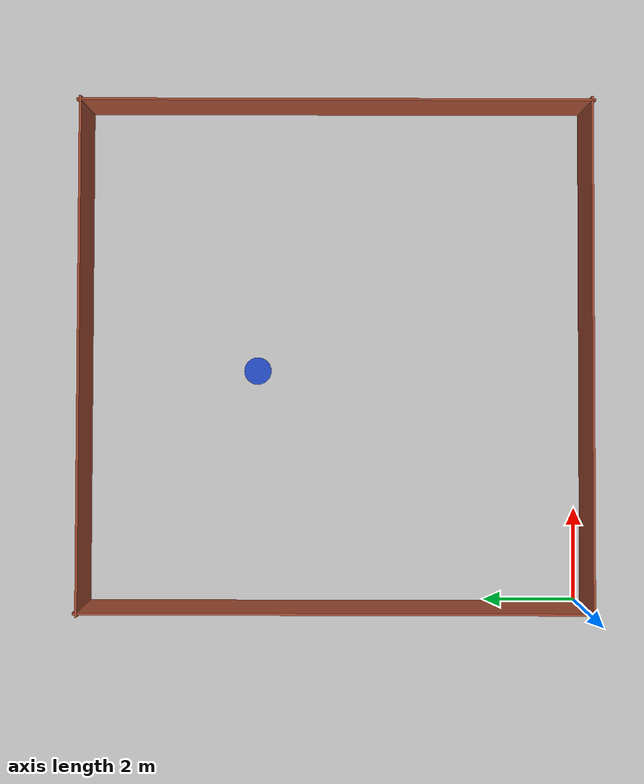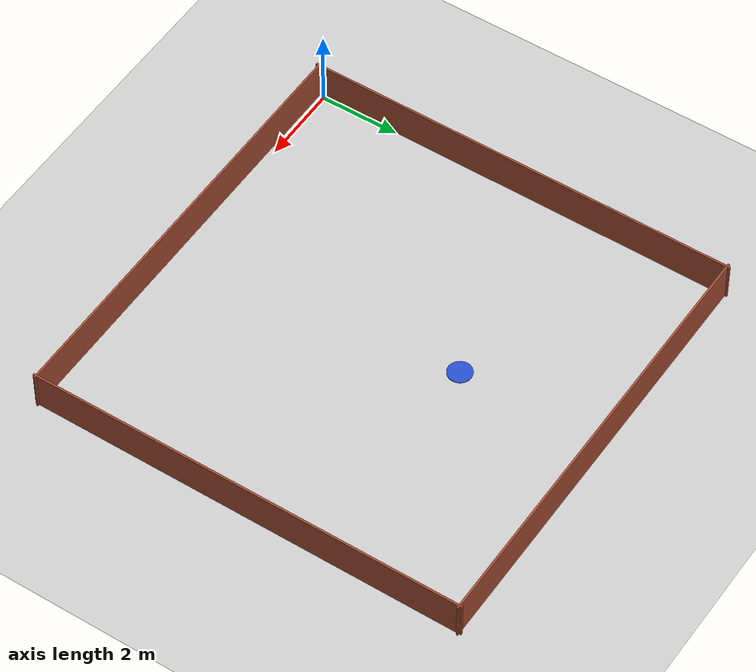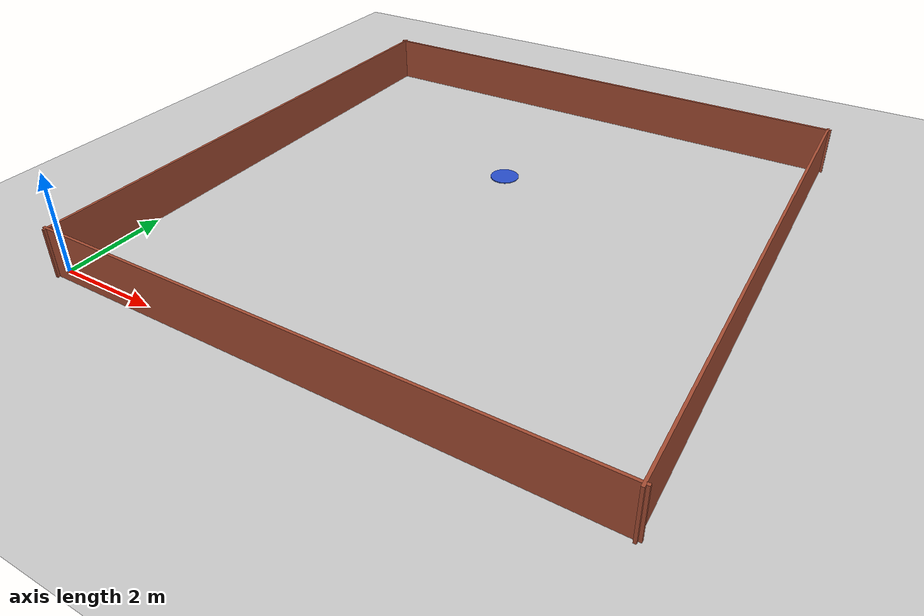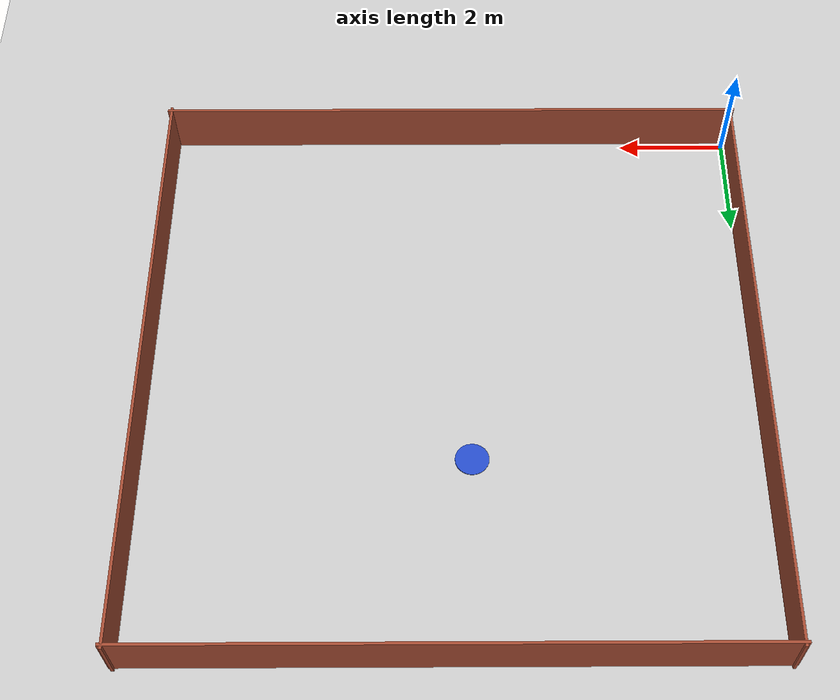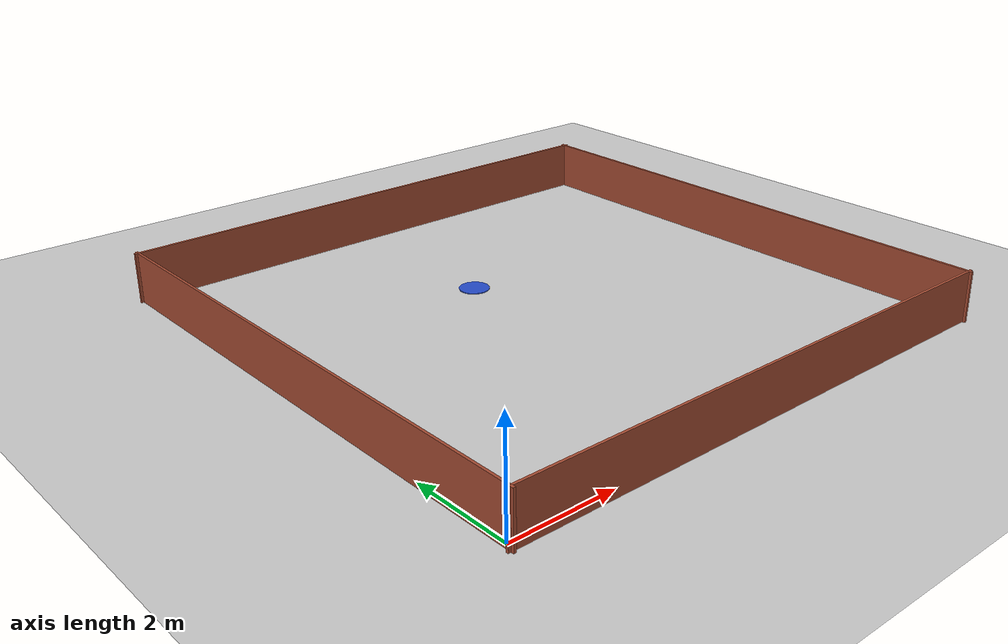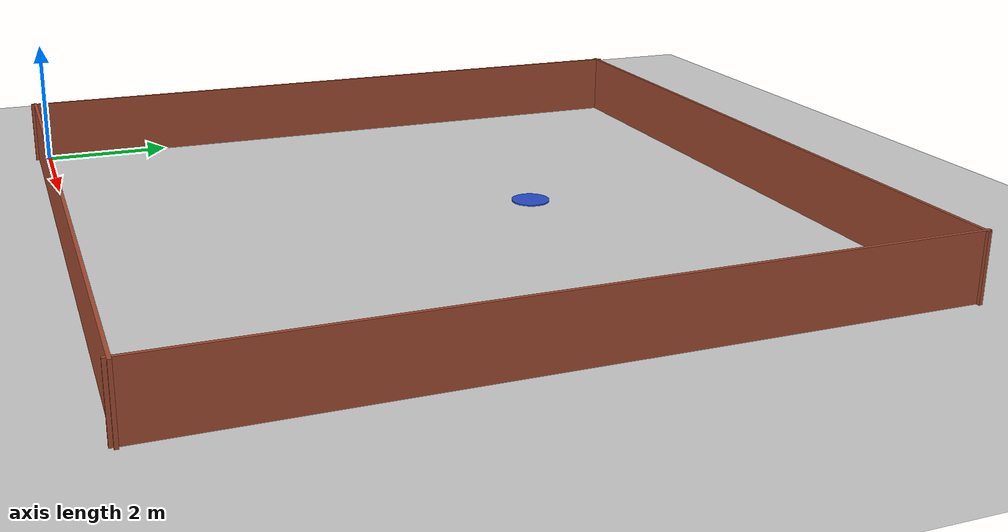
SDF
<sdf version="1.7">
 <world name="default">
  <light name="sun" type="directional">
   <pose>0 0 10 0 -0 0</pose>
   <diffuse>0.8 0.8 0.8 1</diffuse>
   <specular>0.2 0.2 0.2 1</specular>
   <attenuation>
    <range>1000</range>
    <constant>0.9</constant>
    <linear>0.01</linear>
    <quadratic>0.001</quadratic>
   </attenuation>
   <direction>-0.5 0.1 -0.9</direction>
   <spot><inner_angle>0</inner_angle><outer_angle>0</outer_angle><falloff>0</falloff></spot>
  </light>
  <model name="ground_plane">
   <static>1</static>
   <link name="link">
    <collision name="collision">
     <geometry><plane><normal>0 0 1</normal><size>100 100</size></plane></geometry>
     <surface>
      <contact><collide_bitmask>65535</collide_bitmask></contact>
      <friction><ode><mu>100</mu><mu2>50</mu2></ode></friction>
     </surface>
    </collision>
    <visual name="visual">
     <cast_shadows>0</cast_shadows>
     <geometry><plane><normal>0 0 1</normal><size>100 100</size></plane></geometry>
     <material>
      <script><uri>file://media/materials/scripts/gazebo.material</uri><name>Gazebo/Grey</name></script>
     </material>
    </visual>
   </link>
  </model>
  <gravity>0 0 -9.8</gravity>
  <magnetic_field>6e-06 2.3e-05 -4.2e-05</magnetic_field>
  <atmosphere type="adiabatic"/>
  <physics type="ode">
   <max_step_size>0.001</max_step_size>
   <real_time_factor>1</real_time_factor>
   <real_time_update_rate>1000</real_time_update_rate>
  </physics>
  <scene><ambient>0.4 0.4 0.4 1</ambient><background>0.7 0.7 0.7 1</background><shadows>1</shadows></scene>
  <spherical_coordinates>
   <surface_model>EARTH_WGS84</surface_model>
   <latitude_deg>0</latitude_deg>
   <longitude_deg>0</longitude_deg>
   <elevation>0</elevation>
   <heading_deg>0</heading_deg>
  </spherical_coordinates>
  <model name="11X11-EmptyWorld">
   <link name="Wall_0">
    <pose>0 5.425 0 0 -0 0</pose>
    <inertial>
     <mass>1</mass>
     <inertia><ixx>1</ixx><ixy>0</ixy><ixz>0</ixz><iyy>1</iyy><iyz>0</iyz><izz>1</izz></inertia>
    </inertial>
    <visual name="Wall_0_Visual">
     <pose>0 0 1.25 0 -0 0</pose>
     <geometry><box><size>11 0.05 1</size></box></geometry>
     <material>
      <script><uri>file://media/materials/scripts/gazebo.material</uri><name>Gazebo/Bricks</name></script>
      <ambient>1 1 1 1</ambient>
      <shader type="pixel"><normal_map>__default__</normal_map></shader>
      <diffuse>1 1 1 1</diffuse>
      <specular>0.2 0.2 0.2 1</specular>
      <emissive>0 0 0 1</emissive>
     </material>
     <meta><layer>0</layer></meta>
    </visual>
    <collision name="Wall_0_Collision">
     <pose>0 0 1.25 0 -0 0</pose>
     <geometry><box><size>11 0.15 2.5</size></box></geometry>
     <surface>
      <friction>
       <ode><mu>1</mu><mu2>1</mu2><fdir1>0 0 0</fdir1><slip1>0</slip1><slip2>0</slip2></ode>
       <torsional>
        <coefficient>1</coefficient>
        <patch_radius>0</patch_radius>
        <surface_radius>0</surface_radius>
        <use_patch_radius>1</use_patch_radius>
        <ode><slip>0</slip></ode>
       </torsional>
      </friction>
      <bounce><restitution_coefficient>0</restitution_coefficient><threshold>1e+06</threshold></bounce>
      <contact>
       <collide_without_contact>0</collide_without_contact>
       <collide_without_contact_bitmask>1</collide_without_contact_bitmask>
       <collide_bitmask>1</collide_bitmask>
       <ode>
        <soft_cfm>0</soft_cfm>
        <soft_erp>0.2</soft_erp>
        <kp>1e+13</kp>
        <kd>1</kd>
        <max_vel>0.01</max_vel>
        <min_depth>0</min_depth>
       </ode>
       <bullet>
        <split_impulse>1</split_impulse>
        <split_impulse_penetration_threshold>-0.01</split_impulse_penetration_threshold>
        <soft_cfm>0</soft_cfm>
        <soft_erp>0.2</soft_erp>
        <kp>1e+13</kp>
        <kd>1</kd>
       </bullet>
      </contact>
     </surface>
    </collision>
   </link>
   <link name="Wall_5">
    <pose>5.425 0 0 0 0 -1.5708</pose>
    <inertial>
     <mass>1</mass>
     <inertia><ixx>1</ixx><ixy>0</ixy><ixz>0</ixz><iyy>1</iyy><iyz>0</iyz><izz>1</izz></inertia>
    </inertial>
    <visual name="Wall_5_Visual">
     <pose>0 0 1.25 0 -0 0</pose>
     <geometry><box><size>11 0.05 1</size></box></geometry>
     <material>
      <script><uri>file://media/materials/scripts/gazebo.material</uri><name>Gazebo/Bricks</name></script>
      <ambient>1 1 1 1</ambient>
      <shader type="pixel"><normal_map>__default__</normal_map></shader>
      <diffuse>1 1 1 1</diffuse>
      <specular>0.2 0.2 0.2 1</specular>
      <emissive>0 0 0 1</emissive>
     </material>
     <meta><layer>0</layer></meta>
    </visual>
    <collision name="Wall_5_Collision">
     <pose>0 0 1.25 0 -0 0</pose>
     <geometry><box><size>11 0.15 2.5</size></box></geometry>
     <surface>
      <friction>
       <ode><mu>1</mu><mu2>1</mu2><fdir1>0 0 0</fdir1><slip1>0</slip1><slip2>0</slip2></ode>
       <torsional>
        <coefficient>1</coefficient>
        <patch_radius>0</patch_radius>
        <surface_radius>0</surface_radius>
        <use_patch_radius>1</use_patch_radius>
        <ode><slip>0</slip></ode>
       </torsional>
      </friction>
      <bounce><restitution_coefficient>0</restitution_coefficient><threshold>1e+06</threshold></bounce>
      <contact>
       <collide_without_contact>0</collide_without_contact>
       <collide_without_contact_bitmask>1</collide_without_contact_bitmask>
       <collide_bitmask>1</collide_bitmask>
       <ode>
        <soft_cfm>0</soft_cfm>
        <soft_erp>0.2</soft_erp>
        <kp>1e+13</kp>
        <kd>1</kd>
        <max_vel>0.01</max_vel>
        <min_depth>0</min_depth>
       </ode>
       <bullet>
        <split_impulse>1</split_impulse>
        <split_impulse_penetration_threshold>-0.01</split_impulse_penetration_threshold>
        <soft_cfm>0</soft_cfm>
        <soft_erp>0.2</soft_erp>
        <kp>1e+13</kp>
        <kd>1</kd>
       </bullet>
      </contact>
     </surface>
    </collision>
   </link>
   <link name="Wall_8">
    <pose>0 -5.425 0 0 -0 3.14159</pose>
    <inertial>
     <mass>1</mass>
     <inertia><ixx>1</ixx><ixy>0</ixy><ixz>0</ixz><iyy>1</iyy><iyz>0</iyz><izz>1</izz></inertia>
    </inertial>
    <visual name="Wall_8_Visual">
     <pose>0 0 1.25 0 -0 0</pose>
     <geometry><box><size>11 0.05 1</size></box></geometry>
     <material>
      <script><uri>file://media/materials/scripts/gazebo.material</uri><name>Gazebo/Bricks</name></script>
      <ambient>1 1 1 1</ambient>
      <shader type="pixel"><normal_map>__default__</normal_map></shader>
      <diffuse>1 1 1 1</diffuse>
      <specular>0.2 0.2 0.2 1</specular>
      <emissive>0 0 0 1</emissive>
     </material>
     <meta><layer>0</layer></meta>
    </visual>
    <collision name="Wall_8_Collision">
     <pose>0 0 1.25 0 -0 0</pose>
     <geometry><box><size>11 0.5 1</size></box></geometry>
     <surface>
      <friction>
       <ode><mu>1</mu><mu2>1</mu2><fdir1>0 0 0</fdir1><slip1>0</slip1><slip2>0</slip2></ode>
       <torsional>
        <coefficient>1</coefficient>
        <patch_radius>0</patch_radius>
        <surface_radius>0</surface_radius>
        <use_patch_radius>1</use_patch_radius>
        <ode><slip>0</slip></ode>
       </torsional>
      </friction>
      <bounce><restitution_coefficient>0</restitution_coefficient><threshold>1e+06</threshold></bounce>
      <contact>
       <collide_without_contact>0</collide_without_contact>
       <collide_without_contact_bitmask>1</collide_without_contact_bitmask>
       <collide_bitmask>1</collide_bitmask>
       <ode>
        <soft_cfm>0</soft_cfm>
        <soft_erp>0.2</soft_erp>
        <kp>1e+13</kp>
        <kd>1</kd>
        <max_vel>0.01</max_vel>
        <min_depth>0</min_depth>
       </ode>
       <bullet>
        <split_impulse>1</split_impulse>
        <split_impulse_penetration_threshold>-0.01</split_impulse_penetration_threshold>
        <soft_cfm>0</soft_cfm>
        <soft_erp>0.2</soft_erp>
        <kp>1e+13</kp>
        <kd>1</kd>
       </bullet>
      </contact>
     </surface>
    </collision>
   </link>
   <link name="Wall_9">
    <pose>-5.425 0 0 0 -0 1.5708</pose>
    <inertial>
     <mass>1</mass>
     <inertia><ixx>1</ixx><ixy>0</ixy><ixz>0</ixz><iyy>1</iyy><iyz>0</iyz><izz>1</izz></inertia>
    </inertial>
    <visual name="Wall_9_Visual">
     <pose>0 0 1.25 0 -0 0</pose>
     <geometry><box><size>11 0.05 1</size></box></geometry>
     <material>
      <script><uri>file://media/materials/scripts/gazebo.material</uri><name>Gazebo/Bricks</name></script>
      <ambient>1 1 1 1</ambient>
      <shader type="pixel"><normal_map>__default__</normal_map></shader>
      <diffuse>1 1 1 1</diffuse>
      <specular>0.2 0.2 0.2 1</specular>
      <emissive>0 0 0 1</emissive>
     </material>
     <meta><layer>0</layer></meta>
    </visual>
    <collision name="Wall_9_Collision">
     <pose>0 0 1.25 0 -0 0</pose>
     <geometry><box><size>11 0.15 2.5</size></box></geometry>
     <surface>
      <friction>
       <ode><mu>1</mu><mu2>1</mu2><fdir1>0 0 0</fdir1><slip1>0</slip1><slip2>0</slip2></ode>
       <torsional>
        <coefficient>1</coefficient>
        <patch_radius>0</patch_radius>
        <surface_radius>0</surface_radius>
        <use_patch_radius>1</use_patch_radius>
        <ode><slip>0</slip></ode>
       </torsional>
      </friction>
      <bounce><restitution_coefficient>0</restitution_coefficient><threshold>1e+06</threshold></bounce>
      <contact>
       <collide_without_contact>0</collide_without_contact>
       <collide_without_contact_bitmask>1</collide_without_contact_bitmask>
       <collide_bitmask>1</collide_bitmask>
       <ode>
        <soft_cfm>0</soft_cfm>
        <soft_erp>0.2</soft_erp>
        <kp>1e+13</kp>
        <kd>1</kd>
        <max_vel>0.01</max_vel>
        <min_depth>0</min_depth>
       </ode>
       <bullet>
        <split_impulse>1</split_impulse>
        <split_impulse_penetration_threshold>-0.01</split_impulse_penetration_threshold>
        <soft_cfm>0</soft_cfm>
        <soft_erp>0.2</soft_erp>
        <kp>1e+13</kp>
        <kd>1</kd>
       </bullet>
      </contact>
     </surface>
    </collision>
   </link>
   <static>1</static>
   <pose>5.37317 5.2717 -0.763043 0 -0 0</pose>
  </model>
  <model name="terminal">
   <link name="link_1">
    <inertial>
     <mass>1</mass>
     <inertia><ixx>0.145833</ixx><ixy>0</ixy><ixz>0</ixz><iyy>0.145833</iyy><iyz>0</iyz><izz>0.125</izz></inertia>
    </inertial>
    <pose>0 -0 -0.49 0 -0 0</pose>
    <visual name="visual">
     <geometry><cylinder><radius>0.3</radius><length>0.02</length></cylinder></geometry>
     <material>
      <lighting>1</lighting>
      <script><uri>file://media/materials/scripts/gazebo.material</uri><name>Gazebo/Blue</name></script>
      <shader type="pixel"><normal_map>__default__</normal_map></shader>
      <ambient>0.3 0.3 0.3 1</ambient>
      <diffuse>0 1 0 1</diffuse>
      <specular>0.01 0.01 0.01 1</specular>
      <emissive>0 0 0 1</emissive>
     </material>
    </visual>
    <collision name="collision">
     <geometry><cylinder><radius>0.3</radius><length>0.02</length></cylinder></geometry>
     <surface>
      <friction>
       <ode><mu>1</mu><mu2>1</mu2><fdir1>0 0 0</fdir1><slip1>0</slip1><slip2>0</slip2></ode>
       <torsional>
        <coefficient>1</coefficient>
        <patch_radius>0</patch_radius>
        <surface_radius>0</surface_radius>
        <use_patch_radius>1</use_patch_radius>
        <ode><slip>0</slip></ode>
       </torsional>
      </friction>
      <bounce><restitution_coefficient>0</restitution_coefficient><threshold>1e+06</threshold></bounce>
      <contact>
       <collide_without_contact>0</collide_without_contact>
       <collide_without_contact_bitmask>1</collide_without_contact_bitmask>
       <collide_bitmask>1</collide_bitmask>
       <ode>
        <soft_cfm>0</soft_cfm>
        <soft_erp>0.2</soft_erp>
        <kp>1e+13</kp>
        <kd>1</kd>
        <max_vel>0.01</max_vel>
        <min_depth>0</min_depth>
       </ode>
       <bullet>
        <split_impulse>1</split_impulse>
        <split_impulse_penetration_threshold>-0.01</split_impulse_penetration_threshold>
        <soft_cfm>0</soft_cfm>
        <soft_erp>0.2</soft_erp>
        <kp>1e+13</kp>
        <kd>1</kd>
       </bullet>
      </contact>
     </surface>
    </collision>
   </link>
   <static>0</static>
   <pose>5.03505 6.99933 0.499991 0 -0 0</pose>
  </model>
 </world>
</sdf>
